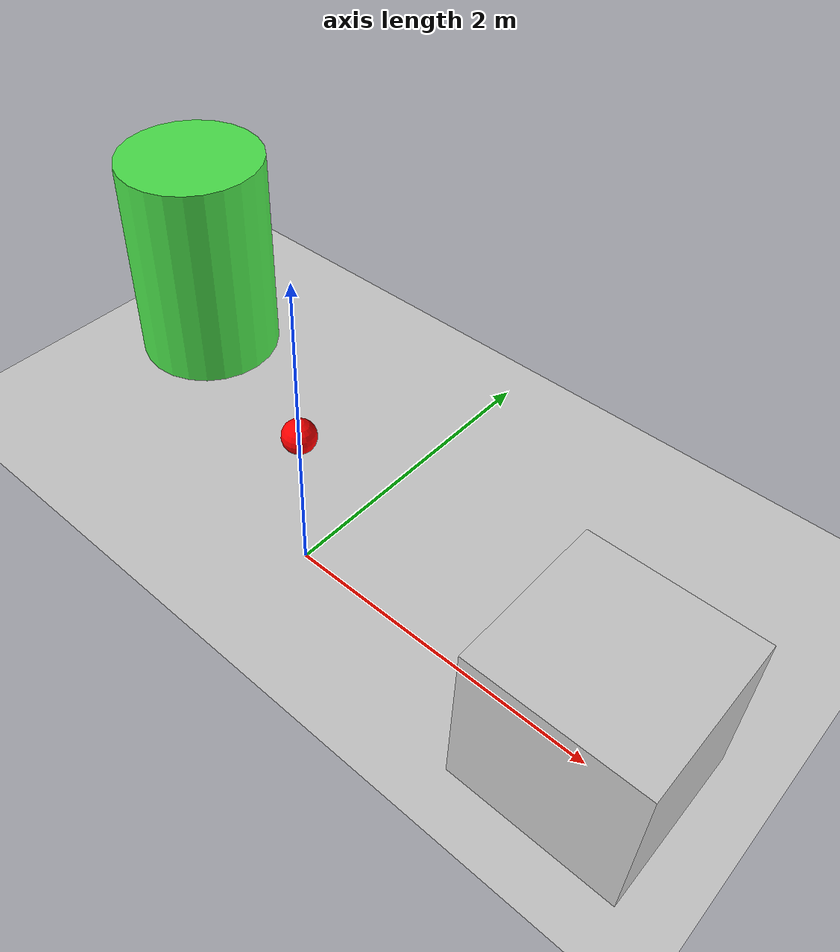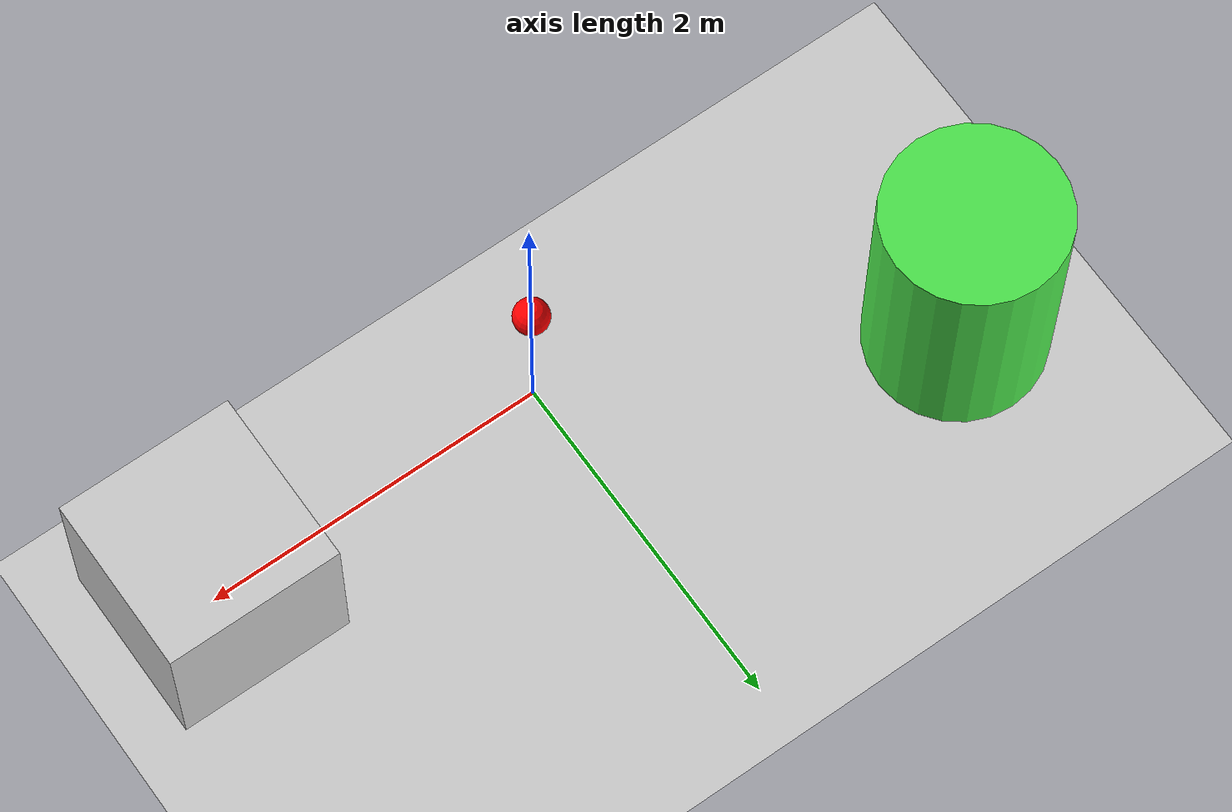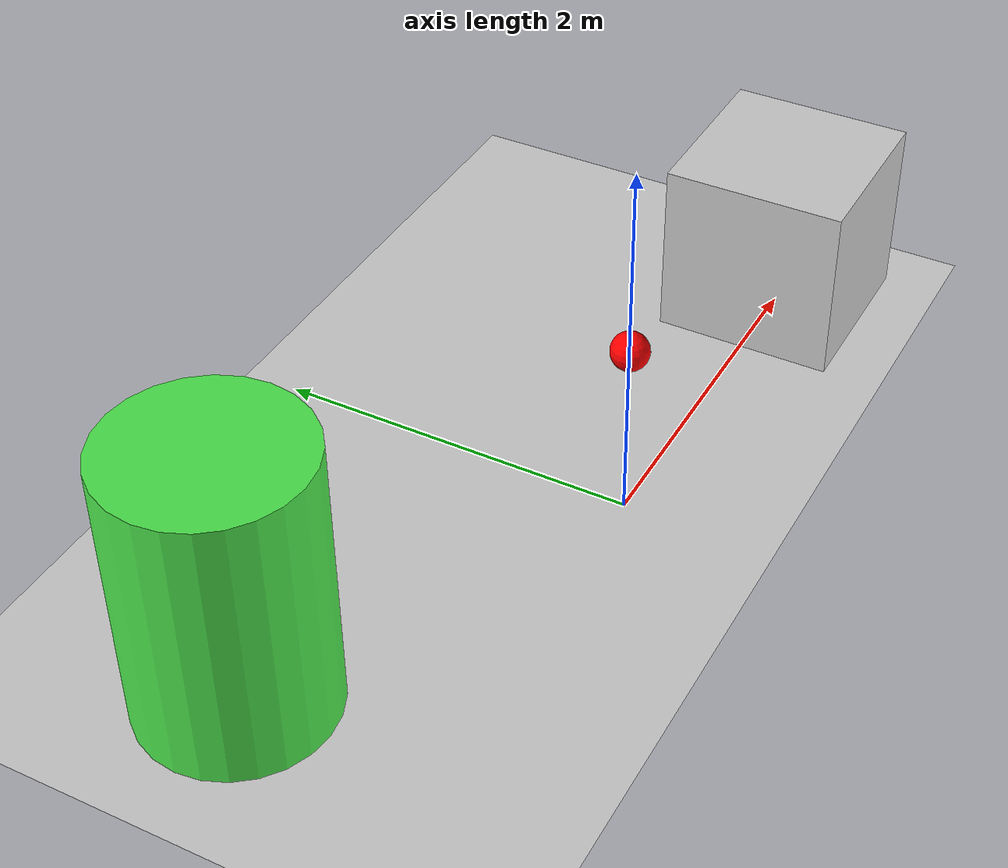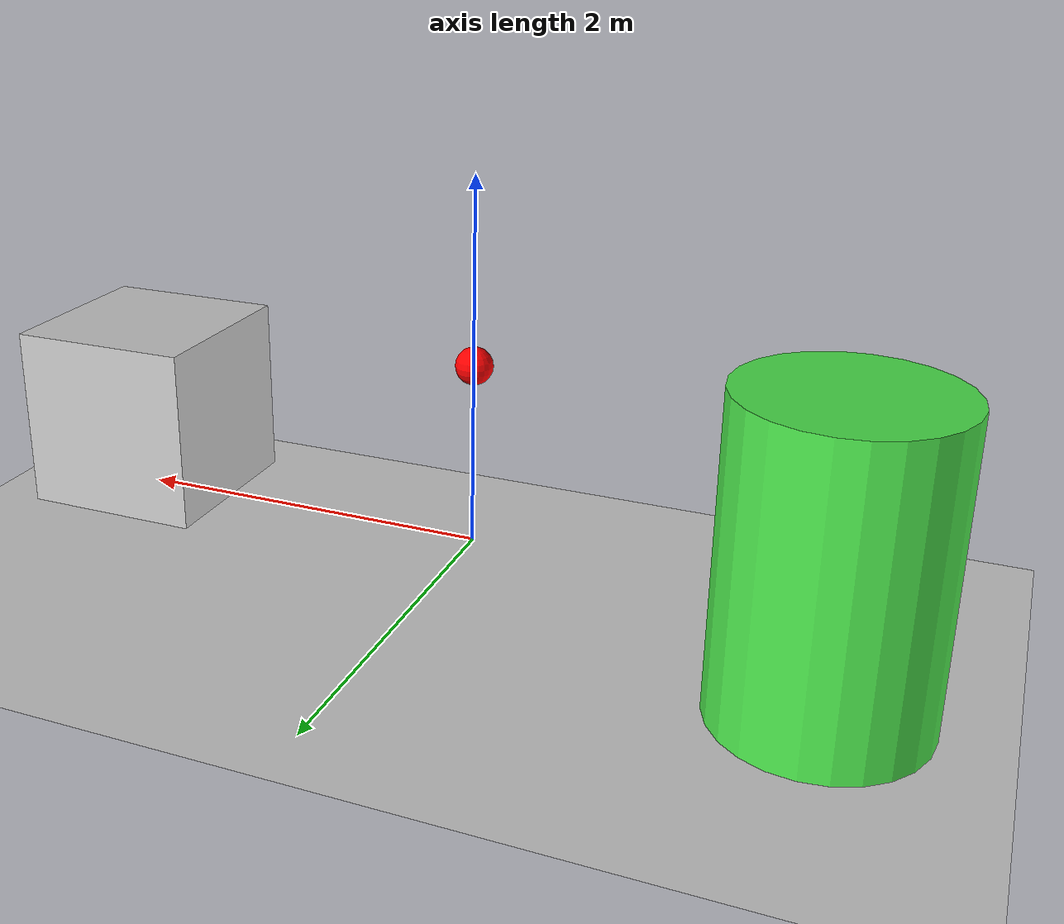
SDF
<?xml version="1.0" ?>
<sdf version="1.7">
  <world name="basic_humanoid_world">
    <!-- Physics Engine Configuration -->
    <physics type="ode">
      <max_step_size>0.001</max_step_size>
      <real_time_factor>1.0</real_time_factor>
      <real_time_update_rate>1000.0</real_time_update_rate>
      <gravity>0 0 -9.8</gravity>
    </physics>

    <!-- GUI Configuration -->
    <gui fullscreen="0">
      <camera name="user_camera">
        <pose>5.0 -5.0 2.0 0.0 0.3 1.0</pose>
        <view_controller>orbit</view_controller>
        <projection_type>perspective</projection_type>
      </camera>
    </gui>

    <!-- Ground Plane -->
    <include>
      <uri>model://ground_plane</uri>
    </include>

    <!-- Sun Light -->
    <include>
      <uri>model://sun</uri>
    </include>

    <!-- Simple Box Obstacle -->
    <model name="simple_box">
      <pose>2 0 0.5 0 0 0</pose>
      <static>true</static>
      <link name="link">
        <collision name="collision">
          <geometry>
            <box>
              <size>1 1 1</size>
            </box>
          </geometry>
        </collision>
        <visual name="visual">
          <geometry>
            <box>
              <size>1 1 1</size>
            </box>
          </geometry>
          <material>
            <ambient>0.5 0.5 0.5 1</ambient>
            <diffuse>0.8 0.8 0.8 1</diffuse>
            <specular>0.1 0.1 0.1 1</specular>
          </material>
        </visual>
      </link>
    </model>

    <!-- Another obstacle -->
    <model name="cylinder_obstacle">
      <pose>-2 1 0.75 0 0 0</pose>
      <static>true</static>
      <link name="link">
        <collision name="collision">
          <geometry>
            <cylinder>
              <radius>0.5</radius>
              <length>1.5</length>
            </cylinder>
          </geometry>
        </collision>
        <visual name="visual">
          <geometry>
            <cylinder>
              <radius>0.5</radius>
              <length>1.5</length>
            </cylinder>
          </geometry>
          <material>
            <ambient>0.2 0.6 0.2 1</ambient>
            <diffuse>0.3 0.9 0.3 1</diffuse>
            <specular>0.1 0.1 0.1 1</specular>
          </material>
        </visual>
      </link>
    </model>

    <!-- Empty space for robot placement -->
    <model name="humanoid_robot_placeholder">
      <pose>0 0 1.0 0 0 0</pose>
      <static>false</static>
      <link name="base_link">
        <collision name="collision">
          <geometry>
            <sphere>
              <radius>0.1</radius>
            </sphere>
          </geometry>
        </collision>
        <visual name="visual">
          <geometry>
            <sphere>
              <radius>0.1</radius>
            </sphere>
          </geometry>
          <material>
            <ambient>1 0 0 1</ambient>
            <diffuse>1 0 0 1</diffuse>
            <specular>0.1 0.1 0.1 1</specular>
          </material>
        </visual>
        <inertial>
          <mass>1.0</mass>
          <inertia>
            <ixx>0.01</ixx>
            <ixy>0</ixy>
            <ixz>0</ixz>
            <iyy>0.01</iyy>
            <iyz>0</iyz>
            <izz>0.01</izz>
          </inertia>
        </inertial>
      </link>
    </model>

  </world>
</sdf>
